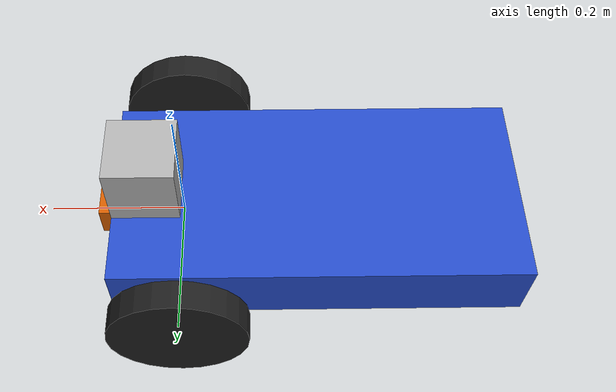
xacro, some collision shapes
<?xml version='1.0'?>

<robot name="my_robot" xmlns:xacro="http://www.ros.org/wiki/xacro">
  <xacro:include filename="$(find my_robot)/urdf/my_robot.gazebo" />
  <xacro:include filename="$(find my_robot)/urdf/wheel.xacro" />
  <xacro:include filename="$(find my_robot)/urdf/caster.xacro" />

  <xacro:property name="chassis_mass" value="15" />
  <xacro:property name="chassis_length" value="0.6" />
  <xacro:property name="chassis_width" value="0.3" />
  <xacro:property name="chassis_height" value="0.1" />

  <gazebo reference="left_wheel">
    <material>Gazebo/Black</material>
  </gazebo>
  <gazebo reference="right_wheel">
    <material>Gazebo/Black</material>
  </gazebo>
  <gazebo reference="chassis">
    <material>Gazebo/Blue</material>
  </gazebo>

  <link name="robot_footprint"></link>

  <joint name="robot_footprint_joint" type="fixed">
    <origin xyz="0 0 0" rpy="0 0 0" />
    <parent link="robot_footprint"/>
    <child link="chassis" />
  </joint>

  <link name='chassis'>
    <pose>0 0 0.2 0 0 0</pose>

    <inertial>
      <mass value="${chassis_mass}"/>
      <origin xyz="0 0 0" rpy=" 0 0 0"/>
      <inertia
          ixx="${1/12*chassis_mass*(chassis_width*chassis_width + chassis_height*chassis_height)}" ixy="0" ixz="0"
          iyy="${1/12*chassis_mass*(chassis_length*chassis_length + chassis_height*chassis_height)}" iyz="0"
          izz="${1/12*chassis_mass*(chassis_length*chassis_length + chassis_width*chassis_width)}"
      />
    </inertial>

    <collision name='collision'>
      <origin xyz="-0.2 0 0" rpy=" 0 0 0"/>
      <geometry>
        <box size="${chassis_length} ${chassis_width} ${chassis_height}"/>
      </geometry>
    </collision>

    <visual name='chassis_visual'>
      <origin xyz="-0.2 0 0" rpy=" 0 0 0"/>
      <geometry>
        <box size="${chassis_length} ${chassis_width} ${chassis_height}"/>
      </geometry>
    </visual>
  </link>

  <xacro:link_caster name="back_caster" />
  <xacro:joint_caster name="back_caster_joint" child="back_caster" origin_xyz="-0.45 0 -0.05" />

  <xacro:link_wheel name="right_wheel" />
  <xacro:joint_wheel name="right_wheel_hinge" child="right_wheel" origin_xyz="0 -0.2 0" />

  <xacro:link_wheel name="left_wheel" />
  <xacro:joint_wheel name="left_wheel_hinge" child="left_wheel" origin_xyz="0 0.2 0" />

  <link name='camera'>
    <inertial>
      <mass value="0.1"/>
      <origin xyz="0 0 0" rpy="0 0 0"/>
      <inertia
          ixx="1e-6" ixy="0" ixz="0"
          iyy="1e-6" iyz="0"
          izz="1e-6"
      />
    </inertial>

    <collision name='collision'>
      <origin xyz="0 0 0" rpy="0 0 0"/>
      <geometry>
        <box size="0.05 0.05 0.05"/>
      </geometry>
    </collision>

    <visual name='chassis_visual'>
      <origin xyz="0 0 0" rpy="0 0 0"/>
      <geometry>
        <box size="0.05 0.05 0.05"/>
      </geometry>
    </visual>
  </link>

  <joint type="fixed" name="camera_joint">
    <origin xyz="0.1 0 0" rpy="0 0 0"/>
    <child link="camera"/>
    <parent link="chassis"/>
    <axis xyz="0 1 0" rpy="0 0 0"/>
    <limit effort="10000" velocity="1000"/>
    <dynamics damping="1.0" friction="1.0"/>
  </joint>

  <joint name="camera_optical_joint" type="fixed">
    <origin xyz="0 0 0" rpy="-1.5707 0 -1.5707"/>
    <parent link="camera"/>
    <child link="camera_link_optical"/>
  </joint>

  <link name="camera_link_optical">
  </link>

  <link name='hokuyo'>
    <inertial>
      <mass value="1e-5"/>
      <origin xyz="0 0 0" rpy="0 0 0"/>
      <inertia
          ixx="1e-6" ixy="0" ixz="0"
          iyy="1e-6" iyz="0"
          izz="1e-6"
      />
    </inertial>

    <collision name='collision'>
      <origin xyz="0 0 0" rpy="0 0 0"/>
      <geometry>
        <box size="0.1 0.1 0.1"/>
      </geometry>
    </collision>

    <visual name='chassis_visual'>
      <origin xyz="0 0 0" rpy="0 0 0"/>
      <geometry>
        <mesh filename="package://my_robot/meshes/hokuyo.dae"/>
      </geometry>
    </visual>
  </link>

  <joint type="fixed" name="hokuyo_joint">
    <origin xyz="0.05 0 0.1" rpy="0 0 0"/>
    <child link="hokuyo"/>
    <parent link="chassis"/>
    <axis xyz="0 1 0" rpy="0 0 0"/>
    <limit effort="10000" velocity="1000"/>
    <dynamics damping="1.0" friction="1.0"/>
  </joint>
</robot>

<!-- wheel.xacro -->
<robot xmlns:xacro="http://wiki.ros.org/xacro">
  <xacro:property name="wheel_mass" value="0.5" />
  <xacro:property name="wheel_radius" value="0.1" />
  <xacro:property name="wheel_width" value="0.04" />
  <xacro:property name="wheel_mrr" value="${wheel_mass*wheel_radius*wheel_radius}" />
  <xacro:property name="wheel_mww" value="${wheel_mass*wheel_width*wheel_width}" />

  <xacro:macro name='link_wheel' params='name'>
    <link name='${name}'>
      <inertial>
        <mass value="${wheel_mass}"/>
        <origin xyz="0 0 0" rpy="0 ${pi/2} ${pi/2}"/>
        <inertia
            ixx="${1/4*wheel_mrr + 1/12*wheel_mww}" ixy="0" ixz="0"
            iyy="${1/4*wheel_mrr + 1/12*wheel_mww}" iyz="0"
            izz="${1/2*wheel_mrr}"
        />
      </inertial>

      <collision name='${name}_collision'>
        <origin xyz="0 0 0" rpy="0 ${pi/2} ${pi/2}"/>
          <geometry>
            <cylinder radius="${wheel_radius}" length="${wheel_width}"/>
          </geometry>
      </collision>

      <visual name='${name}_visual'>
        <origin xyz="0 0 0" rpy="0 ${pi/2} ${pi/2}"/>
          <geometry>
            <cylinder radius="${wheel_radius}" length="${wheel_width}"/>
          </geometry>
      </visual>
    </link>
  </xacro:macro>

  <xacro:macro name='joint_wheel' params='name child origin_xyz'>
    <joint type="continuous" name="${name}">
      <origin xyz="${origin_xyz}" rpy="0 0 0"/>
      <child link="${child}"/>
      <parent link="chassis"/>
      <axis xyz="0 1 0" rpy="0 0 0"/>
      <limit effort="10000" velocity="1000"/>
      <dynamics damping="0.1" friction="0.1"/>
    </joint>
  </xacro:macro>
</robot>

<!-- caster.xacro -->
<robot xmlns:xacro="http://wiki.ros.org/xacro">
  <xacro:macro name='link_caster' params='name'>
    <xacro:property name="caster_mass" value="0.5" />
    <xacro:property name="caster_radius" value="0.05" />

    <link name='${name}'>
      <inertial>
        <mass value="${caster_mass}"/>
        <origin xyz="0 0 0" rpy="0 0 0"/>
        <inertia
            ixx="${2/5*caster_mass*caster_radius*caster_radius}" ixy="0" ixz="0"
            iyy="${2/5*caster_mass*caster_radius*caster_radius}" iyz="0"
            izz="${2/5*caster_mass*caster_radius*caster_radius}"
        />
      </inertial>

      <collision name='back_caster_collision'>
        <origin xyz="0 0 0" rpy=" 0 0 0"/>
          <geometry>
            <sphere radius="${caster_radius - 0.0001}"/>
          </geometry>
      </collision>

      <visual name='back_caster_visual'>
        <origin xyz="0 0 0" rpy=" 0 0 0"/>
          <geometry>
            <sphere radius="${caster_radius}"/>
          </geometry>
      </visual>
    </link>
  </xacro:macro>

  <xacro:macro name='joint_caster' params='name child origin_xyz'>
    <joint type="fixed" name="${name}">
      <origin xyz="${origin_xyz}" rpy="0 0 0"/>
      <child link="${child}"/>
      <parent link="chassis"/>
      <axis xyz="0 1 0" rpy="0 0 0"/>
      <limit effort="10000" velocity="1000"/>
      <dynamics damping="0.1" friction="0.1"/>
    </joint>
  </xacro:macro>
</robot>
